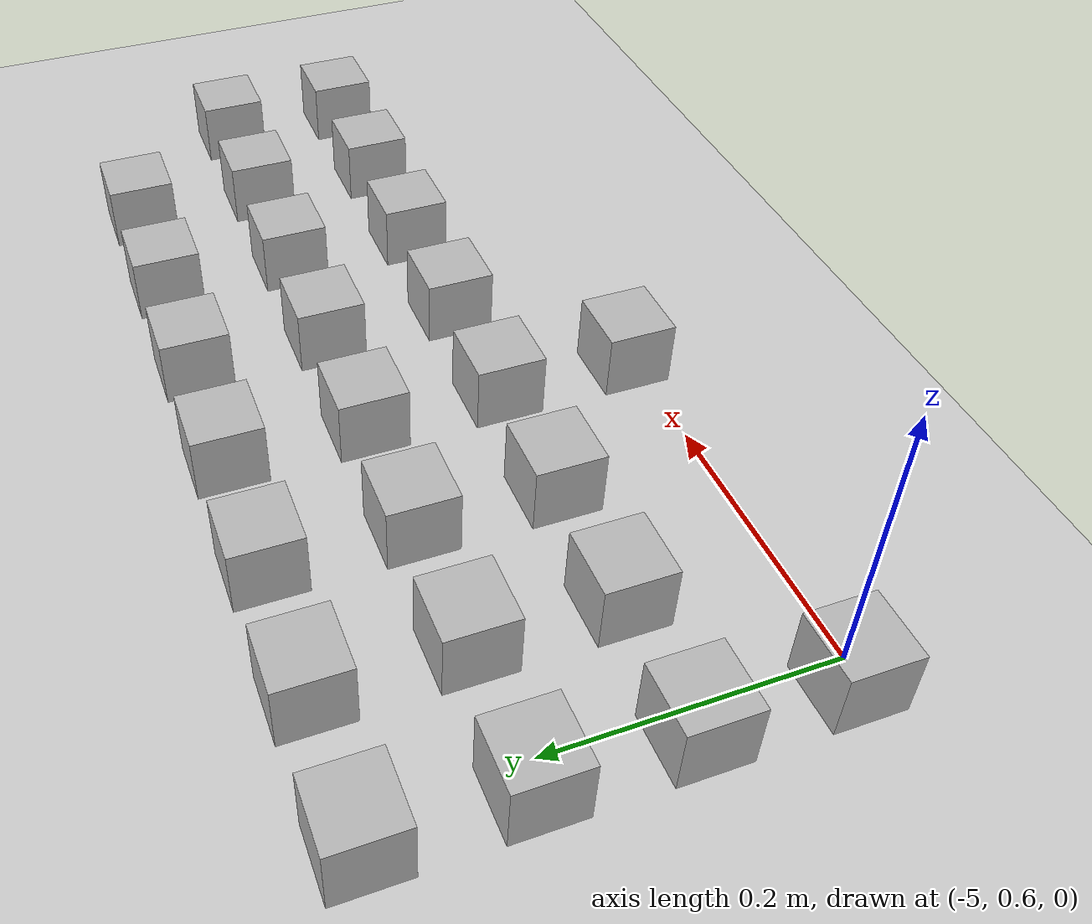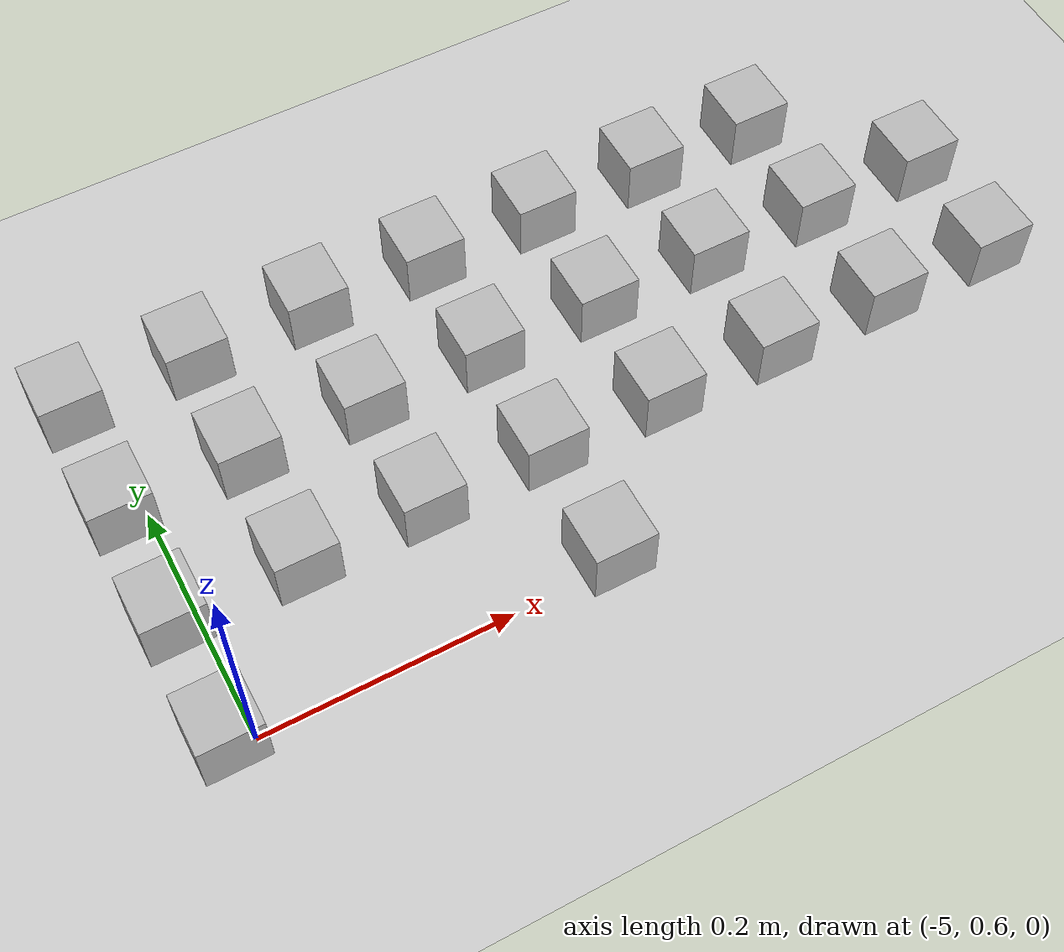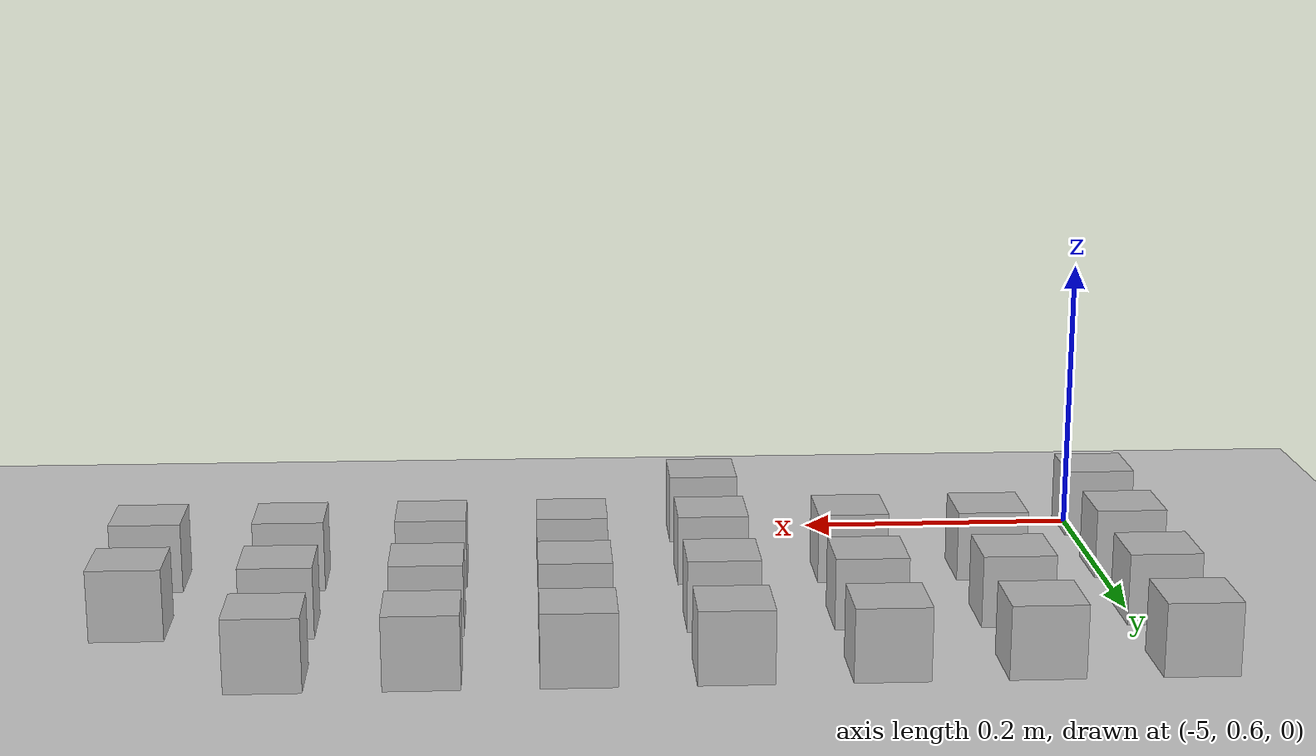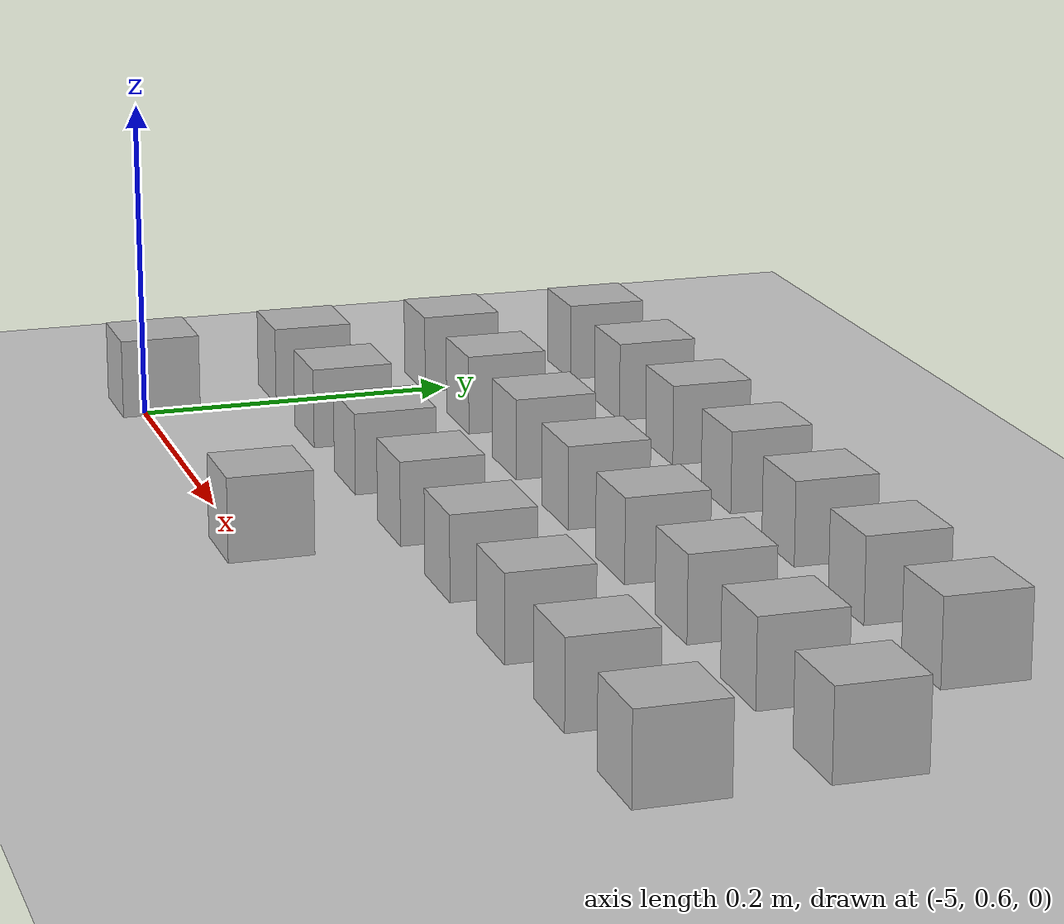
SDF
<sdf version="1.6">
 <world name="default">
  <model name="ground_plane">
   <static>1</static>
   <link name="link">
    <collision name="collision">
     <geometry><plane><normal>0 0 1</normal><size>100 100</size></plane></geometry>
     <surface><friction><ode><mu>100</mu><mu2>50</mu2></ode></friction></surface>
    </collision>
    <visual name="visual">
     <cast_shadows>0</cast_shadows>
     <geometry><plane><normal>0 0 1</normal><size>100 100</size></plane></geometry>
     <material>
      <script><uri>file://media/materials/scripts/gazebo.material</uri><name>Gazebo/Grey</name></script>
     </material>
    </visual>
    <velocity_decay><linear>0</linear><angular>0</angular></velocity_decay>
   </link>
  </model>
  <model name="at8">
   <static>0</static>
   <link name="link">
    <inertial>
     <mass>0.01</mass>
     <inertia><ixx>4e-05</ixx><ixy>0</ixy><ixz>0</ixz><iyy>4e-05</iyy><iyz>0</iyz><izz>4e-05</izz></inertia>
    </inertial>
    <visual name="visual">
     <transparency>0.1</transparency>
     <geometry><box><size>0.05 0.05 0.05</size></box></geometry>
     <material>
      <script>
       <uri>model://at0/materials/scripts</uri>
       <uri>model://at0/materials/textures</uri>
       <name>at0/Diffuse</name>
      </script>
     </material>
    </visual>
    <collision name="collision">
     <geometry><box><size>0.05 0.05 0.05</size></box></geometry>
     <surface><friction><ode><mu>0.8</mu><mu2>0.7</mu2></ode></friction></surface>
    </collision>
    <velocity_decay><linear>0</linear><angular>0</angular></velocity_decay>
   </link>
   <pose>-5.01833 0.609653 0.024993 -2.9e-05 -2.9e-05 8e-06</pose>
  </model>
  <model name="at11">
   <static>0</static>
   <link name="link">
    <inertial>
     <mass>0.01</mass>
     <inertia><ixx>4e-05</ixx><ixy>0</ixy><ixz>0</ixz><iyy>4e-05</iyy><iyz>0</iyz><izz>4e-05</izz></inertia>
    </inertial>
    <visual name="visual">
     <transparency>0.1</transparency>
     <geometry><box><size>0.05 0.05 0.05</size></box></geometry>
     <material>
      <script>
       <uri>model://at0/materials/scripts</uri>
       <uri>model://at0/materials/textures</uri>
       <name>at0/Diffuse</name>
      </script>
     </material>
    </visual>
    <collision name="collision">
     <geometry><box><size>0.05 0.05 0.05</size></box></geometry>
     <surface><friction><ode><mu>0.8</mu><mu2>0.7</mu2></ode></friction></surface>
    </collision>
    <velocity_decay><linear>0</linear><angular>0</angular></velocity_decay>
   </link>
   <pose>-4.71833 0.609653 0.024993 -2.9e-05 -2.9e-05 7e-06</pose>
  </model>
  <model name="at16">
   <static>0</static>
   <link name="link">
    <inertial>
     <mass>0.01</mass>
     <inertia><ixx>4e-05</ixx><ixy>0</ixy><ixz>0</ixz><iyy>4e-05</iyy><iyz>0</iyz><izz>4e-05</izz></inertia>
    </inertial>
    <visual name="visual">
     <transparency>0.1</transparency>
     <geometry><box><size>0.05 0.05 0.05</size></box></geometry>
     <material>
      <script>
       <uri>model://at0/materials/scripts</uri>
       <uri>model://at0/materials/textures</uri>
       <name>at0/Diffuse</name>
      </script>
     </material>
    </visual>
    <collision name="collision">
     <geometry><box><size>0.05 0.05 0.05</size></box></geometry>
     <surface><friction><ode><mu>0.8</mu><mu2>0.7</mu2></ode></friction></surface>
    </collision>
    <velocity_decay><linear>0</linear><angular>0</angular></velocity_decay>
   </link>
   <pose>-5.01833 0.709653 0.024993 -2.9e-05 -2.9e-05 7e-06</pose>
  </model>
  <model name="at17">
   <static>0</static>
   <link name="link">
    <inertial>
     <mass>0.01</mass>
     <inertia><ixx>4e-05</ixx><ixy>0</ixy><ixz>0</ixz><iyy>4e-05</iyy><iyz>0</iyz><izz>4e-05</izz></inertia>
    </inertial>
    <visual name="visual">
     <transparency>0.1</transparency>
     <geometry><box><size>0.05 0.05 0.05</size></box></geometry>
     <material>
      <script>
       <uri>model://at0/materials/scripts</uri>
       <uri>model://at0/materials/textures</uri>
       <name>at0/Diffuse</name>
      </script>
     </material>
    </visual>
    <collision name="collision">
     <geometry><box><size>0.05 0.05 0.05</size></box></geometry>
     <surface><friction><ode><mu>0.8</mu><mu2>0.7</mu2></ode></friction></surface>
    </collision>
    <velocity_decay><linear>0</linear><angular>0</angular></velocity_decay>
   </link>
   <pose>-4.91833 0.709653 0.024993 -2.9e-05 -2.9e-05 7e-06</pose>
  </model>
  <model name="at18">
   <static>0</static>
   <link name="link">
    <inertial>
     <mass>0.01</mass>
     <inertia><ixx>4e-05</ixx><ixy>0</ixy><ixz>0</ixz><iyy>4e-05</iyy><iyz>0</iyz><izz>4e-05</izz></inertia>
    </inertial>
    <visual name="visual">
     <transparency>0.1</transparency>
     <geometry><box><size>0.05 0.05 0.05</size></box></geometry>
     <material>
      <script>
       <uri>model://at0/materials/scripts</uri>
       <uri>model://at0/materials/textures</uri>
       <name>at0/Diffuse</name>
      </script>
     </material>
    </visual>
    <collision name="collision">
     <geometry><box><size>0.05 0.05 0.05</size></box></geometry>
     <surface><friction><ode><mu>0.8</mu><mu2>0.7</mu2></ode></friction></surface>
    </collision>
    <velocity_decay><linear>0</linear><angular>0</angular></velocity_decay>
   </link>
   <pose>-4.81833 0.709652 0.024997 2.9e-05 2.9e-05 7e-06</pose>
  </model>
  <model name="at19">
   <static>0</static>
   <link name="link">
    <inertial>
     <mass>0.01</mass>
     <inertia><ixx>4e-05</ixx><ixy>0</ixy><ixz>0</ixz><iyy>4e-05</iyy><iyz>0</iyz><izz>4e-05</izz></inertia>
    </inertial>
    <visual name="visual">
     <transparency>0.1</transparency>
     <geometry><box><size>0.05 0.05 0.05</size></box></geometry>
     <material>
      <script>
       <uri>model://at0/materials/scripts</uri>
       <uri>model://at0/materials/textures</uri>
       <name>at0/Diffuse</name>
      </script>
     </material>
    </visual>
    <collision name="collision">
     <geometry><box><size>0.05 0.05 0.05</size></box></geometry>
     <surface><friction><ode><mu>0.8</mu><mu2>0.7</mu2></ode></friction></surface>
    </collision>
    <velocity_decay><linear>0</linear><angular>0</angular></velocity_decay>
   </link>
   <pose>-4.71833 0.709653 0.024993 -2.9e-05 -2.9e-05 7e-06</pose>
  </model>
  <model name="at20">
   <static>0</static>
   <link name="link">
    <inertial>
     <mass>0.01</mass>
     <inertia><ixx>4e-05</ixx><ixy>0</ixy><ixz>0</ixz><iyy>4e-05</iyy><iyz>0</iyz><izz>4e-05</izz></inertia>
    </inertial>
    <visual name="visual">
     <transparency>0.1</transparency>
     <geometry><box><size>0.05 0.05 0.05</size></box></geometry>
     <material>
      <script>
       <uri>model://at0/materials/scripts</uri>
       <uri>model://at0/materials/textures</uri>
       <name>at0/Diffuse</name>
      </script>
     </material>
    </visual>
    <collision name="collision">
     <geometry><box><size>0.05 0.05 0.05</size></box></geometry>
     <surface><friction><ode><mu>0.8</mu><mu2>0.7</mu2></ode></friction></surface>
    </collision>
    <velocity_decay><linear>0</linear><angular>0</angular></velocity_decay>
   </link>
   <pose>-4.61833 0.709653 0.024993 -2.9e-05 -2.9e-05 7e-06</pose>
  </model>
  <model name="at21">
   <static>0</static>
   <link name="link">
    <inertial>
     <mass>0.01</mass>
     <inertia><ixx>4e-05</ixx><ixy>0</ixy><ixz>0</ixz><iyy>4e-05</iyy><iyz>0</iyz><izz>4e-05</izz></inertia>
    </inertial>
    <visual name="visual">
     <transparency>0.1</transparency>
     <geometry><box><size>0.05 0.05 0.05</size></box></geometry>
     <material>
      <script>
       <uri>model://at0/materials/scripts</uri>
       <uri>model://at0/materials/textures</uri>
       <name>at0/Diffuse</name>
      </script>
     </material>
    </visual>
    <collision name="collision">
     <geometry><box><size>0.05 0.05 0.05</size></box></geometry>
     <surface><friction><ode><mu>0.8</mu><mu2>0.7</mu2></ode></friction></surface>
    </collision>
    <velocity_decay><linear>0</linear><angular>0</angular></velocity_decay>
   </link>
   <pose>-4.51833 0.709653 0.024993 -2.9e-05 -2.9e-05 6e-06</pose>
  </model>
  <model name="at22">
   <static>0</static>
   <link name="link">
    <inertial>
     <mass>0.01</mass>
     <inertia><ixx>4e-05</ixx><ixy>0</ixy><ixz>0</ixz><iyy>4e-05</iyy><iyz>0</iyz><izz>4e-05</izz></inertia>
    </inertial>
    <visual name="visual">
     <transparency>0.1</transparency>
     <geometry><box><size>0.05 0.05 0.05</size></box></geometry>
     <material>
      <script>
       <uri>model://at0/materials/scripts</uri>
       <uri>model://at0/materials/textures</uri>
       <name>at0/Diffuse</name>
      </script>
     </material>
    </visual>
    <collision name="collision">
     <geometry><box><size>0.05 0.05 0.05</size></box></geometry>
     <surface><friction><ode><mu>0.8</mu><mu2>0.7</mu2></ode></friction></surface>
    </collision>
    <velocity_decay><linear>0</linear><angular>0</angular></velocity_decay>
   </link>
   <pose>-4.41833 0.709653 0.024993 -2.9e-05 -2.9e-05 6e-06</pose>
  </model>
  <model name="at23">
   <static>0</static>
   <link name="link">
    <inertial>
     <mass>0.01</mass>
     <inertia><ixx>4e-05</ixx><ixy>0</ixy><ixz>0</ixz><iyy>4e-05</iyy><iyz>0</iyz><izz>4e-05</izz></inertia>
    </inertial>
    <visual name="visual">
     <transparency>0.1</transparency>
     <geometry><box><size>0.05 0.05 0.05</size></box></geometry>
     <material>
      <script>
       <uri>model://at0/materials/scripts</uri>
       <uri>model://at0/materials/textures</uri>
       <name>at0/Diffuse</name>
      </script>
     </material>
    </visual>
    <collision name="collision">
     <geometry><box><size>0.05 0.05 0.05</size></box></geometry>
     <surface><friction><ode><mu>0.8</mu><mu2>0.7</mu2></ode></friction></surface>
    </collision>
    <velocity_decay><linear>0</linear><angular>0</angular></velocity_decay>
   </link>
   <pose>-4.31833 0.709653 0.024993 -2.9e-05 -2.9e-05 6e-06</pose>
  </model>
  <model name="at24">
   <static>0</static>
   <link name="link">
    <inertial>
     <mass>0.01</mass>
     <inertia><ixx>4e-05</ixx><ixy>0</ixy><ixz>0</ixz><iyy>4e-05</iyy><iyz>0</iyz><izz>4e-05</izz></inertia>
    </inertial>
    <visual name="visual">
     <transparency>0.1</transparency>
     <geometry><box><size>0.05 0.05 0.05</size></box></geometry>
     <material>
      <script>
       <uri>model://at0/materials/scripts</uri>
       <uri>model://at0/materials/textures</uri>
       <name>at0/Diffuse</name>
      </script>
     </material>
    </visual>
    <collision name="collision">
     <geometry><box><size>0.05 0.05 0.05</size></box></geometry>
     <surface><friction><ode><mu>0.8</mu><mu2>0.7</mu2></ode></friction></surface>
    </collision>
    <velocity_decay><linear>0</linear><angular>0</angular></velocity_decay>
   </link>
   <pose>-5.01833 0.809652 0.024997 2.9e-05 2.9e-05 6e-06</pose>
  </model>
  <model name="at25">
   <static>0</static>
   <link name="link">
    <inertial>
     <mass>0.01</mass>
     <inertia><ixx>4e-05</ixx><ixy>0</ixy><ixz>0</ixz><iyy>4e-05</iyy><iyz>0</iyz><izz>4e-05</izz></inertia>
    </inertial>
    <visual name="visual">
     <transparency>0.1</transparency>
     <geometry><box><size>0.05 0.05 0.05</size></box></geometry>
     <material>
      <script>
       <uri>model://at0/materials/scripts</uri>
       <uri>model://at0/materials/textures</uri>
       <name>at0/Diffuse</name>
      </script>
     </material>
    </visual>
    <collision name="collision">
     <geometry><box><size>0.05 0.05 0.05</size></box></geometry>
     <surface><friction><ode><mu>0.8</mu><mu2>0.7</mu2></ode></friction></surface>
    </collision>
    <velocity_decay><linear>0</linear><angular>0</angular></velocity_decay>
   </link>
   <pose>-4.91833 0.809653 0.024993 -2.9e-05 -2.9e-05 6e-06</pose>
  </model>
  <model name="at26">
   <static>0</static>
   <link name="link">
    <inertial>
     <mass>0.01</mass>
     <inertia><ixx>4e-05</ixx><ixy>0</ixy><ixz>0</ixz><iyy>4e-05</iyy><iyz>0</iyz><izz>4e-05</izz></inertia>
    </inertial>
    <visual name="visual">
     <transparency>0.1</transparency>
     <geometry><box><size>0.05 0.05 0.05</size></box></geometry>
     <material>
      <script>
       <uri>model://at0/materials/scripts</uri>
       <uri>model://at0/materials/textures</uri>
       <name>at0/Diffuse</name>
      </script>
     </material>
    </visual>
    <collision name="collision">
     <geometry><box><size>0.05 0.05 0.05</size></box></geometry>
     <surface><friction><ode><mu>0.8</mu><mu2>0.7</mu2></ode></friction></surface>
    </collision>
    <velocity_decay><linear>0</linear><angular>0</angular></velocity_decay>
   </link>
   <pose>-4.81833 0.809652 0.024997 2.9e-05 2.9e-05 6e-06</pose>
  </model>
  <model name="at27">
   <static>0</static>
   <link name="link">
    <inertial>
     <mass>0.01</mass>
     <inertia><ixx>4e-05</ixx><ixy>0</ixy><ixz>0</ixz><iyy>4e-05</iyy><iyz>0</iyz><izz>4e-05</izz></inertia>
    </inertial>
    <visual name="visual">
     <transparency>0.1</transparency>
     <geometry><box><size>0.05 0.05 0.05</size></box></geometry>
     <material>
      <script>
       <uri>model://at0/materials/scripts</uri>
       <uri>model://at0/materials/textures</uri>
       <name>at0/Diffuse</name>
      </script>
     </material>
    </visual>
    <collision name="collision">
     <geometry><box><size>0.05 0.05 0.05</size></box></geometry>
     <surface><friction><ode><mu>0.8</mu><mu2>0.7</mu2></ode></friction></surface>
    </collision>
    <velocity_decay><linear>0</linear><angular>0</angular></velocity_decay>
   </link>
   <pose>-4.71833 0.809653 0.024993 -2.9e-05 -2.9e-05 6e-06</pose>
  </model>
  <model name="at28">
   <static>0</static>
   <link name="link">
    <inertial>
     <mass>0.01</mass>
     <inertia><ixx>4e-05</ixx><ixy>0</ixy><ixz>0</ixz><iyy>4e-05</iyy><iyz>0</iyz><izz>4e-05</izz></inertia>
    </inertial>
    <visual name="visual">
     <transparency>0.1</transparency>
     <geometry><box><size>0.05 0.05 0.05</size></box></geometry>
     <material>
      <script>
       <uri>model://at0/materials/scripts</uri>
       <uri>model://at0/materials/textures</uri>
       <name>at0/Diffuse</name>
      </script>
     </material>
    </visual>
    <collision name="collision">
     <geometry><box><size>0.05 0.05 0.05</size></box></geometry>
     <surface><friction><ode><mu>0.8</mu><mu2>0.7</mu2></ode></friction></surface>
    </collision>
    <velocity_decay><linear>0</linear><angular>0</angular></velocity_decay>
   </link>
   <pose>-4.61833 0.809653 0.024993 -2.9e-05 -2.9e-05 6e-06</pose>
  </model>
  <model name="at29">
   <static>0</static>
   <link name="link">
    <inertial>
     <mass>0.01</mass>
     <inertia><ixx>4e-05</ixx><ixy>0</ixy><ixz>0</ixz><iyy>4e-05</iyy><iyz>0</iyz><izz>4e-05</izz></inertia>
    </inertial>
    <visual name="visual">
     <transparency>0.1</transparency>
     <geometry><box><size>0.05 0.05 0.05</size></box></geometry>
     <material>
      <script>
       <uri>model://at0/materials/scripts</uri>
       <uri>model://at0/materials/textures</uri>
       <name>at0/Diffuse</name>
      </script>
     </material>
    </visual>
    <collision name="collision">
     <geometry><box><size>0.05 0.05 0.05</size></box></geometry>
     <surface><friction><ode><mu>0.8</mu><mu2>0.7</mu2></ode></friction></surface>
    </collision>
    <velocity_decay><linear>0</linear><angular>0</angular></velocity_decay>
   </link>
   <pose>-4.51833 0.809653 0.024993 -2.9e-05 -2.9e-05 6e-06</pose>
  </model>
  <model name="at30">
   <static>0</static>
   <link name="link">
    <inertial>
     <mass>0.01</mass>
     <inertia><ixx>4e-05</ixx><ixy>0</ixy><ixz>0</ixz><iyy>4e-05</iyy><iyz>0</iyz><izz>4e-05</izz></inertia>
    </inertial>
    <visual name="visual">
     <transparency>0.1</transparency>
     <geometry><box><size>0.05 0.05 0.05</size></box></geometry>
     <material>
      <script>
       <uri>model://at0/materials/scripts</uri>
       <uri>model://at0/materials/textures</uri>
       <name>at0/Diffuse</name>
      </script>
     </material>
    </visual>
    <collision name="collision">
     <geometry><box><size>0.05 0.05 0.05</size></box></geometry>
     <surface><friction><ode><mu>0.8</mu><mu2>0.7</mu2></ode></friction></surface>
    </collision>
    <velocity_decay><linear>0</linear><angular>0</angular></velocity_decay>
   </link>
   <pose>-4.41833 0.809652 0.024997 2.9e-05 2.9e-05 6e-06</pose>
  </model>
  <model name="at31">
   <static>0</static>
   <link name="link">
    <inertial>
     <mass>0.01</mass>
     <inertia><ixx>4e-05</ixx><ixy>0</ixy><ixz>0</ixz><iyy>4e-05</iyy><iyz>0</iyz><izz>4e-05</izz></inertia>
    </inertial>
    <visual name="visual">
     <transparency>0.1</transparency>
     <geometry><box><size>0.05 0.05 0.05</size></box></geometry>
     <material>
      <script>
       <uri>model://at0/materials/scripts</uri>
       <uri>model://at0/materials/textures</uri>
       <name>at0/Diffuse</name>
      </script>
     </material>
    </visual>
    <collision name="collision">
     <geometry><box><size>0.05 0.05 0.05</size></box></geometry>
     <surface><friction><ode><mu>0.8</mu><mu2>0.7</mu2></ode></friction></surface>
    </collision>
    <velocity_decay><linear>0</linear><angular>0</angular></velocity_decay>
   </link>
   <pose>-4.31833 0.809653 0.024993 -2.9e-05 -2.9e-05 6e-06</pose>
  </model>
  <model name="at32">
   <static>0</static>
   <link name="link">
    <inertial>
     <mass>0.01</mass>
     <inertia><ixx>4e-05</ixx><ixy>0</ixy><ixz>0</ixz><iyy>4e-05</iyy><iyz>0</iyz><izz>4e-05</izz></inertia>
    </inertial>
    <visual name="visual">
     <transparency>0.1</transparency>
     <geometry><box><size>0.05 0.05 0.05</size></box></geometry>
     <material>
      <script>
       <uri>model://at0/materials/scripts</uri>
       <uri>model://at0/materials/textures</uri>
       <name>at0/Diffuse</name>
      </script>
     </material>
    </visual>
    <collision name="collision">
     <geometry><box><size>0.05 0.05 0.05</size></box></geometry>
     <surface><friction><ode><mu>0.8</mu><mu2>0.7</mu2></ode></friction></surface>
    </collision>
    <velocity_decay><linear>0</linear><angular>0</angular></velocity_decay>
   </link>
   <pose>-5.01833 0.909652 0.024997 2.9e-05 2.9e-05 6e-06</pose>
  </model>
  <model name="at33">
   <static>0</static>
   <link name="link">
    <inertial>
     <mass>0.01</mass>
     <inertia><ixx>4e-05</ixx><ixy>0</ixy><ixz>0</ixz><iyy>4e-05</iyy><iyz>0</iyz><izz>4e-05</izz></inertia>
    </inertial>
    <visual name="visual">
     <transparency>0.1</transparency>
     <geometry><box><size>0.05 0.05 0.05</size></box></geometry>
     <material>
      <script>
       <uri>model://at0/materials/scripts</uri>
       <uri>model://at0/materials/textures</uri>
       <name>at0/Diffuse</name>
      </script>
     </material>
    </visual>
    <collision name="collision">
     <geometry><box><size>0.05 0.05 0.05</size></box></geometry>
     <surface><friction><ode><mu>0.8</mu><mu2>0.7</mu2></ode></friction></surface>
    </collision>
    <velocity_decay><linear>0</linear><angular>0</angular></velocity_decay>
   </link>
   <pose>-4.91833 0.909653 0.024993 -2.9e-05 -2.9e-05 5e-06</pose>
  </model>
  <model name="at34">
   <static>0</static>
   <link name="link">
    <inertial>
     <mass>0.01</mass>
     <inertia><ixx>4e-05</ixx><ixy>0</ixy><ixz>0</ixz><iyy>4e-05</iyy><iyz>0</iyz><izz>4e-05</izz></inertia>
    </inertial>
    <visual name="visual">
     <transparency>0.1</transparency>
     <geometry><box><size>0.05 0.05 0.05</size></box></geometry>
     <material>
      <script>
       <uri>model://at0/materials/scripts</uri>
       <uri>model://at0/materials/textures</uri>
       <name>at0/Diffuse</name>
      </script>
     </material>
    </visual>
    <collision name="collision">
     <geometry><box><size>0.05 0.05 0.05</size></box></geometry>
     <surface><friction><ode><mu>0.8</mu><mu2>0.7</mu2></ode></friction></surface>
    </collision>
    <velocity_decay><linear>0</linear><angular>0</angular></velocity_decay>
   </link>
   <pose>-4.81833 0.909652 0.024997 2.9e-05 2.9e-05 5e-06</pose>
  </model>
  <model name="at35">
   <static>0</static>
   <link name="link">
    <inertial>
     <mass>0.01</mass>
     <inertia><ixx>4e-05</ixx><ixy>0</ixy><ixz>0</ixz><iyy>4e-05</iyy><iyz>0</iyz><izz>4e-05</izz></inertia>
    </inertial>
    <visual name="visual">
     <transparency>0.1</transparency>
     <geometry><box><size>0.05 0.05 0.05</size></box></geometry>
     <material>
      <script>
       <uri>model://at0/materials/scripts</uri>
       <uri>model://at0/materials/textures</uri>
       <name>at0/Diffuse</name>
      </script>
     </material>
    </visual>
    <collision name="collision">
     <geometry><box><size>0.05 0.05 0.05</size></box></geometry>
     <surface><friction><ode><mu>0.8</mu><mu2>0.7</mu2></ode></friction></surface>
    </collision>
    <velocity_decay><linear>0</linear><angular>0</angular></velocity_decay>
   </link>
   <pose>-4.71833 0.909653 0.024993 -2.9e-05 -2.9e-05 5e-06</pose>
  </model>
  <model name="at36">
   <static>0</static>
   <link name="link">
    <inertial>
     <mass>0.01</mass>
     <inertia><ixx>4e-05</ixx><ixy>0</ixy><ixz>0</ixz><iyy>4e-05</iyy><iyz>0</iyz><izz>4e-05</izz></inertia>
    </inertial>
    <visual name="visual">
     <transparency>0.1</transparency>
     <geometry><box><size>0.05 0.05 0.05</size></box></geometry>
     <material>
      <script>
       <uri>model://at0/materials/scripts</uri>
       <uri>model://at0/materials/textures</uri>
       <name>at0/Diffuse</name>
      </script>
     </material>
    </visual>
    <collision name="collision">
     <geometry><box><size>0.05 0.05 0.05</size></box></geometry>
     <surface><friction><ode><mu>0.8</mu><mu2>0.7</mu2></ode></friction></surface>
    </collision>
    <velocity_decay><linear>0</linear><angular>0</angular></velocity_decay>
   </link>
   <pose>-4.61833 0.909653 0.024993 -2.9e-05 -2.9e-05 5e-06</pose>
  </model>
  <model name="at37">
   <static>0</static>
   <link name="link">
    <inertial>
     <mass>0.01</mass>
     <inertia><ixx>4e-05</ixx><ixy>0</ixy><ixz>0</ixz><iyy>4e-05</iyy><iyz>0</iyz><izz>4e-05</izz></inertia>
    </inertial>
    <visual name="visual">
     <transparency>0.1</transparency>
     <geometry><box><size>0.05 0.05 0.05</size></box></geometry>
     <material>
      <script>
       <uri>model://at0/materials/scripts</uri>
       <uri>model://at0/materials/textures</uri>
       <name>at0/Diffuse</name>
      </script>
     </material>
    </visual>
    <collision name="collision">
     <geometry><box><size>0.05 0.05 0.05</size></box></geometry>
     <surface><friction><ode><mu>0.8</mu><mu2>0.7</mu2></ode></friction></surface>
    </collision>
    <velocity_decay><linear>0</linear><angular>0</angular></velocity_decay>
   </link>
   <pose>-4.51833 0.909652 0.024997 2.9e-05 2.9e-05 5e-06</pose>
  </model>
  <model name="at38">
   <static>0</static>
   <link name="link">
    <inertial>
     <mass>0.01</mass>
     <inertia><ixx>4e-05</ixx><ixy>0</ixy><ixz>0</ixz><iyy>4e-05</iyy><iyz>0</iyz><izz>4e-05</izz></inertia>
    </inertial>
    <visual name="visual">
     <transparency>0.1</transparency>
     <geometry><box><size>0.05 0.05 0.05</size></box></geometry>
     <material>
      <script>
       <uri>model://at0/materials/scripts</uri>
       <uri>model://at0/materials/textures</uri>
       <name>at0/Diffuse</name>
      </script>
     </material>
    </visual>
    <collision name="collision">
     <geometry><box><size>0.05 0.05 0.05</size></box></geometry>
     <surface><friction><ode><mu>0.8</mu><mu2>0.7</mu2></ode></friction></surface>
    </collision>
    <velocity_decay><linear>0</linear><angular>0</angular></velocity_decay>
   </link>
   <pose>-4.41833 0.909653 0.024993 -2.9e-05 -2.9e-05 5e-06</pose>
  </model>
 </world>
</sdf>
